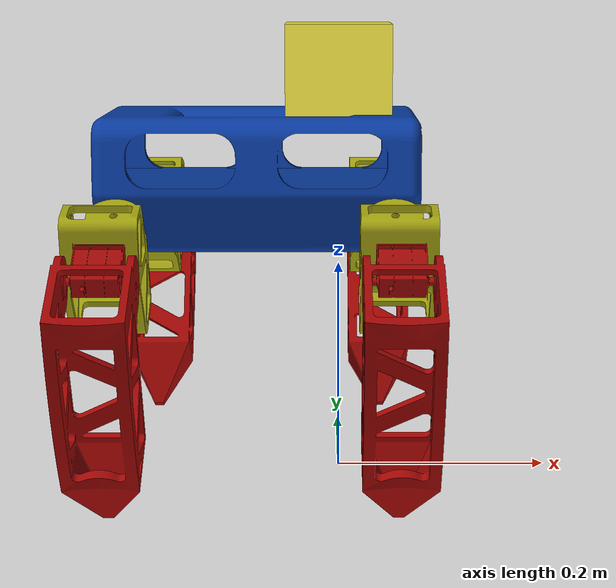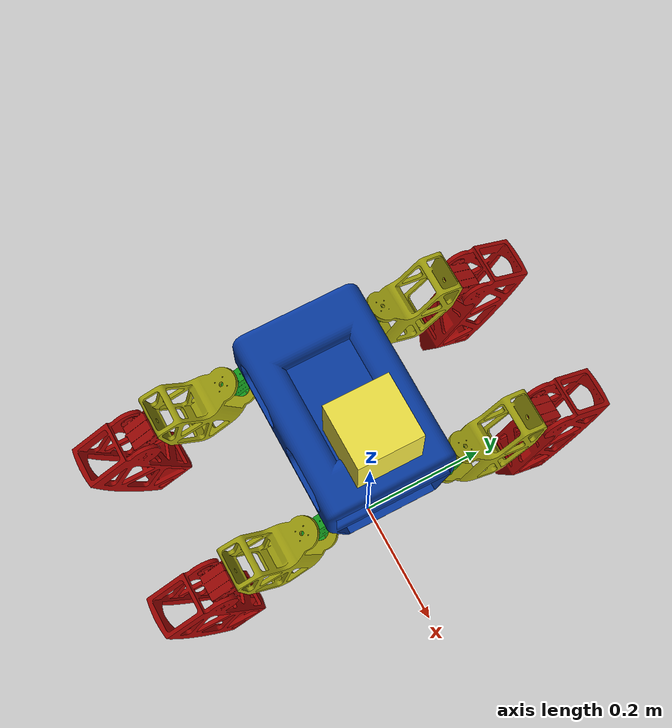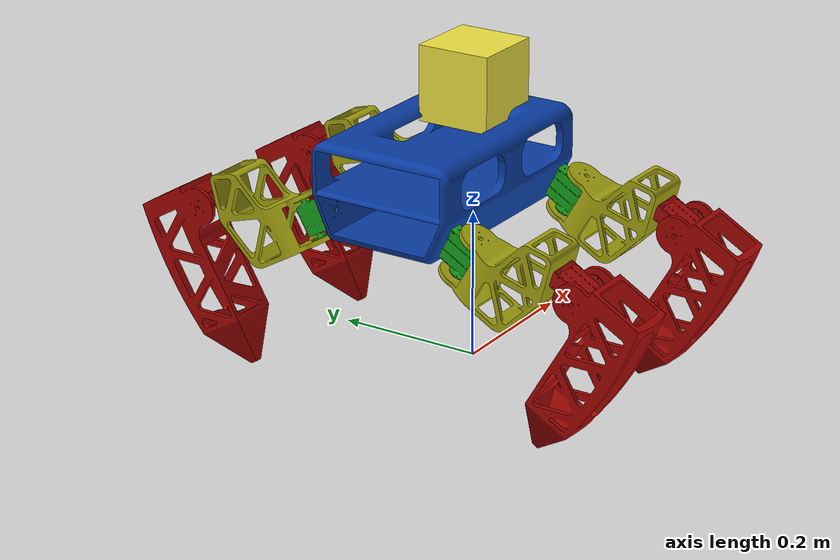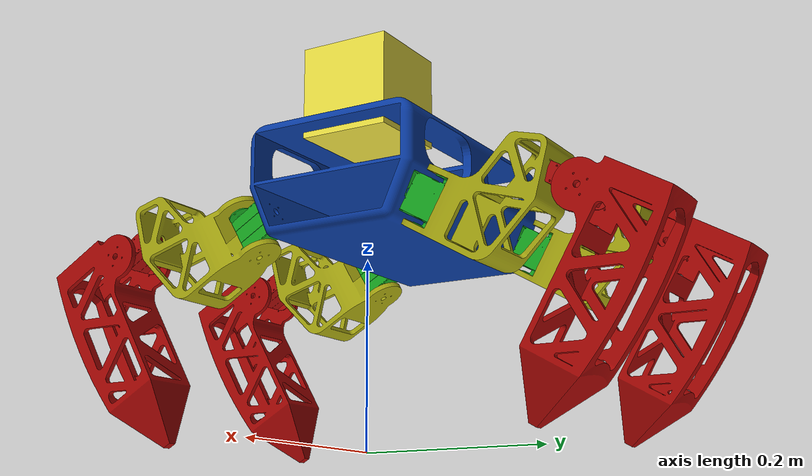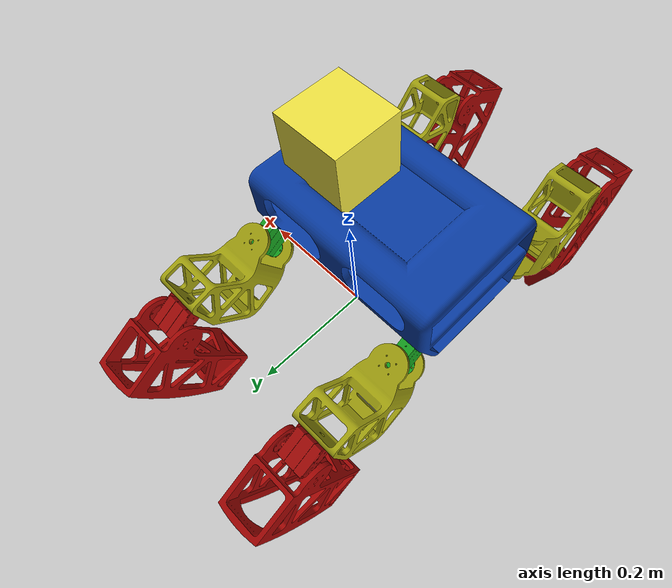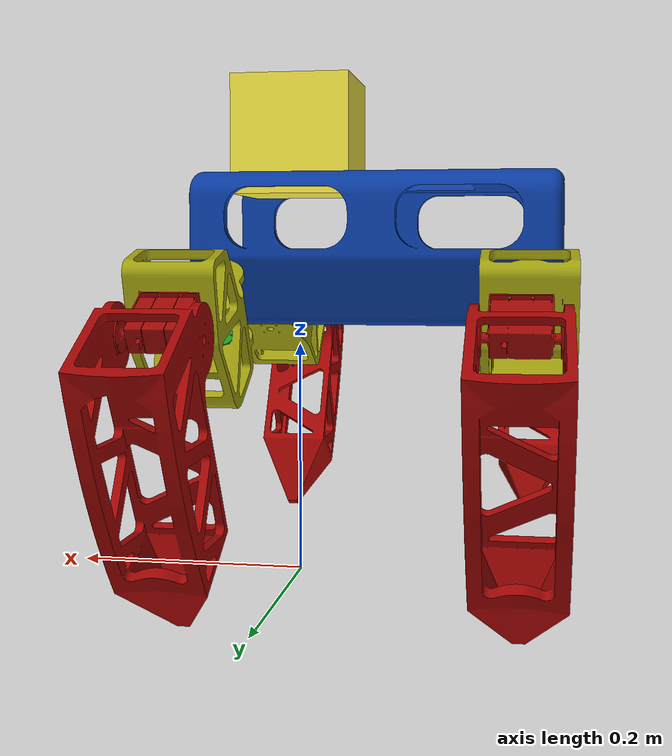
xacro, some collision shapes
<?xml version='1.0'?>

<robot name="insect" xmlns:xacro="http://www.ros.org/wiki/xacro">

<!--xacro parameters-->
<xacro:property name="connect_offset" value="0.02633" />

<!--macro param-->
<xacro:macro name="default_inertial" params="mass">
   <inertial>
     <origin xyz="0 -${connect_offset} 0" rpy="0 0 0" />
     <mass value="${mass}" />
     <inertia ixx="1.0" ixy="0.0" ixz="0.0" iyy="1.0" iyz="0.0" izz="1.0" />
   </inertial>
 </xacro:macro>

<link name="world"/>

<link name="torso_base">
<collision name="collision">
  <origin xyz="0 0 0" rpy="0 0 0"/>
  <geometry>
    <mesh filename="package://insect_1_description/meshes/torso_v1.dae"/>
  </geometry>
</collision>
<visual name="visual">
  <origin xyz="0 0 0" rpy="0 0 0"/>
  <geometry>
    <mesh filename="package://insect_1_description/meshes/torso_v1.dae"/>
  </geometry>
</visual>
<xacro:default_inertial mass="0.8"/>
</link>

 <!--IMU sensor_link-->
  <link name="imu_link">
    <visual>
      <origin rpy="0 0 0" xyz="0 0 0"/>
      <geometry>
        <box size="0.001 0.001 0.001"/> <!--box size="0.001 0.001 0.001"/-->
      </geometry>
    </visual>
    <collision>
      <origin rpy="0 0 0" xyz="0 0 0"/>
      <geometry>
        <box size="0.001 0.001 0.001"/>
      </geometry>
    </collision>
  </link>

  <link name= "l_f_motor">
    <collision name="collision">
      <origin xyz="0 0 0" rpy="0 0 0"/>
        <geometry>
          <mesh filename="package://insect_1_description/meshes/motor_v1.dae"/>
        </geometry>
      </collision>

      <visual name="visual">
        <origin xyz="0 0 0" rpy="0 0 0"/>
        <geometry>
          <mesh filename="package://insect_1_description/meshes/motor_v1.dae"/>
        </geometry>
      </visual>
      <xacro:default_inertial mass="0.2"/>
    </link>

    <link name= "r_f_motor">
      <collision name="collision">
        <origin xyz="0 0 0" rpy="0 0 0"/>
          <geometry>
            <mesh filename="package://insect_1_description/meshes/motor_v1.dae"/>
          </geometry>
        </collision>

        <visual name="visual">
          <origin xyz="0 0 0" rpy="0 0 0"/>
          <geometry>
            <mesh filename="package://insect_1_description/meshes/motor_v1.dae"/>
          </geometry>
        </visual>
        <xacro:default_inertial mass="0.2"/>
      </link>
      <link name= "l_b_motor">
        <collision name="collision">
          <origin xyz="0 0 0" rpy="0 0 0"/>
            <geometry>
              <mesh filename="package://insect_1_description/meshes/motor_v1.dae"/>
            </geometry>
          </collision>

          <visual name="visual">
            <origin xyz="0 0 0" rpy="0 0 0"/>
            <geometry>
              <mesh filename="package://insect_1_description/meshes/motor_v1.dae"/>
            </geometry>
          </visual>
          <xacro:default_inertial mass="0.2"/>
        </link>

        <link name= "r_b_motor">
          <collision name="collision">
            <origin xyz="0 0 0" rpy="0 0 0"/>
              <geometry>
                <mesh filename="package://insect_1_description/meshes/motor_v1.dae"/>
              </geometry>
            </collision>

            <visual name="visual">
              <origin xyz="0 0 0" rpy="0 0 0"/>
              <geometry>
                <mesh filename="package://insect_1_description/meshes/motor_v1.dae"/>
              </geometry>
            </visual>
            <xacro:default_inertial mass="0.2"/>
          </link>
          <link name= "l_f_hip">
            <collision name="collision">
              <origin xyz="0 0 0" rpy="0 0 0"/>
                <geometry>
                  <mesh filename="package://insect_1_description/meshes/hip_v1.dae"/>
                </geometry>
              </collision>

              <visual name="visual">
                <origin xyz="0 0 0" rpy="0 0 0"/>
                <geometry>
                  <mesh filename="package://insect_1_description/meshes/hip_v1.dae"/>
                </geometry>
              </visual>
              <xacro:default_inertial mass="0.4"/>
            </link>
            <link name= "r_f_hip">
              <collision name="collision">
                <origin xyz="0 0 0" rpy="0 0 0"/>
                  <geometry>
                    <mesh filename="package://insect_1_description/meshes/hip_v1.dae"/>
                  </geometry>
                </collision>

                <visual name="visual">
                  <origin xyz="0 0 0" rpy="0 0 0"/>
                  <geometry>
                    <mesh filename="package://insect_1_description/meshes/hip_v1.dae"/>
                  </geometry>
                </visual>
                <xacro:default_inertial mass="0.4"/>
              </link>
              <link name= "l_b_hip">
                <collision name="collision">
                  <origin xyz="0 0 0" rpy="0 0 0"/>
                    <geometry>
                      <mesh filename="package://insect_1_description/meshes/hip_v1.dae"/>
                    </geometry>
                  </collision>

                  <visual name="visual">
                    <origin xyz="0 0 0" rpy="0 0 0"/>
                    <geometry>
                      <mesh filename="package://insect_1_description/meshes/hip_v1.dae"/>
                    </geometry>
                  </visual>
                  <xacro:default_inertial mass="0.4"/>
                </link>
                <link name= "r_b_hip">
                  <collision name="collision">
                    <origin xyz="0 0 0" rpy="0 0 0"/>
                      <geometry>
                        <mesh filename="package://insect_1_description/meshes/hip_v1.dae"/>
                      </geometry>
                    </collision>

                    <visual name="visual">
                      <origin xyz="0 0 0" rpy="0 0 0"/>
                      <geometry>
                        <mesh filename="package://insect_1_description/meshes/hip_v1.dae"/>
                      </geometry>
                    </visual>
                    <xacro:default_inertial mass="0.4"/>
                  </link>
                  <link name= "l_f_h_motor">
        <!-- Camera properties -->
<joint name="camera_rgb_joint" type="fixed">
    <parent link="torso_base"/>
    <child link="camera_rgb_optical_frame"/>
    <origin xyz="0.150 0.0255 0.034" rpy="${pi/2} ${pi} ${pi/2}"/>
</joint>
<link name="camera_rgb_optical_frame">
    <inertial>
        <origin xyz="0.0 0.0 0.0" rpy="0.0 0.0 0.0" />
        <mass value="0.00001"/>
        <inertia
            ixx="1.0" ixy="0.0"  ixz="0.0"
            iyy="1.0" iyz="0.0"
            izz="1.0" />
    </inertial>
</link>

<joint name="camera_depth_joint" type="fixed">
    <parent link="torso_base"/>
    <child link="camera_depth_optical_frame"/>
    <origin xyz="0.150 -0.0225 0.034" rpy="${pi/2} ${pi} ${pi/2}"/>
</joint>
<link name="camera_depth_optical_frame">
    <inertial>
        <origin xyz="0.0 0.0 0.0" rpy="0.0 0.0 0.0" />
        <mass value="0.00001"/>
        <inertia
            ixx="1.0" ixy="0.0"  ixz="0.0"
            iyy="1.0" iyz="0.0"
            izz="1.0" />
    </inertial>
</link>
<collision name="collision">
                      <origin xyz="0 0 0" rpy="0 0 0"/>
                        <geometry>
                          <mesh filename="package://insect_1_description/meshes/motor_h_v1.dae"/>
                        </geometry>
                      </collision>

                      <visual name="visual">
                        <origin xyz="0 0 0" rpy="0 0 0"/>
                        <geometry>
                          <mesh filename="package://insect_1_description/meshes/motor_h_v1.dae"/>
                        </geometry>
                      </visual>
                      <xacro:default_inertial mass="0.2"/>
                    </link>

                    <link name= "r_f_h_motor">
                      <collision name="collision">
                        <origin xyz="0 0 0" rpy="0 0 0"/>
                          <geometry>
                            <mesh filename="package://insect_1_description/meshes/motor_h_v1.dae"/>
                          </geometry>
                        </collision>

                        <visual name="visual">
                          <origin xyz="0 0 0" rpy="0 0 0"/>
                          <geometry>
                            <mesh filename="package://insect_1_description/meshes/motor_h_v1.dae"/>
                          </geometry>
                        </visual>
                        <xacro:default_inertial mass="0.2"/>
                      </link>
                      <link name= "l_b_h_motor">
                        <collision name="collision">
                          <origin xyz="0 0 0" rpy="0 0 0"/>
                            <geometry>
                              <mesh filename="package://insect_1_description/meshes/motor_h_v1.dae"/>
                            </geometry>
                          </collision>

                          <visual name="visual">
                            <origin xyz="0 0 0" rpy="0 0 0"/>
                            <geometry>
                              <mesh filename="package://insect_1_description/meshes/motor_h_v1.dae"/>
                            </geometry>
                          </visual>
                          <xacro:default_inertial mass="0.2"/>
                        </link>
                        <link name= "r_b_h_motor">
                          <collision name="collision">
                            <origin xyz="0 0 0" rpy="0 0 0"/>
                              <geometry>
                                <mesh filename="package://insect_1_description/meshes/motor_h_v1.dae"/>
                              </geometry>
                            </collision>

                            <visual name="visual">
                              <origin xyz="0 0 0" rpy="0 0 0"/>
                              <geometry>
                                <mesh filename="package://insect_1_description/meshes/motor_h_v1.dae"/>
                              </geometry>
                            </visual>
                            <xacro:default_inertial mass="0.2"/>
                          </link>
                          <link name= "l_f_leg">
                            <collision name="collision">
                              <origin xyz="0 0 0" rpy="0 0 0"/>
                                <geometry>
                                  <mesh filename="package://insect_1_description/meshes/leg_v1.dae"/>
                                </geometry>
                              </collision>

                              <visual name="visual">
                                <origin xyz="0 0 0" rpy="0 0 0"/>
                                <geometry>
                                  <mesh filename="package://insect_1_description/meshes/leg_v1.dae"/>
                                </geometry>
                              </visual>
                              <xacro:default_inertial mass="0.4"/>
                            </link>
                            <link name= "l_b_leg">
                              <collision name="collision">
                                <origin xyz="0 0 0" rpy="0 0 0"/>
                                  <geometry>
                                    <mesh filename="package://insect_1_description/meshes/leg_v1.dae"/>
                                  </geometry>
                                </collision>

                                <visual name="visual">
                                  <origin xyz="0 0 0" rpy="0 0 0"/>
                                  <geometry>
                                    <mesh filename="package://insect_1_description/meshes/leg_v1.dae"/>
                                  </geometry>
                                </visual>
                                <xacro:default_inertial mass="0.4"/>
                              </link>
                              <link name= "r_f_leg">
                                <collision name="collision">
                                  <origin xyz="0 0 0" rpy="0 0 0"/>
                                    <geometry>
                                      <mesh filename="package://insect_1_description/meshes/leg_v1.dae"/>
                                    </geometry>
                                  </collision>

                                  <visual name="visual">
                                    <origin xyz="0 0 0" rpy="0 0 0"/>
                                    <geometry>
                                      <mesh filename="package://insect_1_description/meshes/leg_v1.dae"/>
                                    </geometry>
                                  </visual>
                                  <xacro:default_inertial mass="0.4"/>
                                </link>
                                <link name= "r_b_leg">
                                  <collision name="collision">
                                    <origin xyz="0 0 0" rpy="0 0 0"/>
                                      <geometry>
                                        <mesh filename="package://insect_1_description/meshes/leg_v1.dae"/>
                                      </geometry>
                                    </collision>

                                    <visual name="visual">
                                      <origin xyz="0 0 0" rpy="0 0 0"/>
                                      <geometry>
                                        <mesh filename="package://insect_1_description/meshes/leg_v1.dae"/>
                                      </geometry>
                                    </visual>
                                    <xacro:default_inertial mass="0.4"/>
                                  </link>
                                  <link name="hokuyo_link">
                                      <collision>
                                          <origin xyz="0 0 0" rpy="0 0 0"/>
                                          <geometry>
                                              <box size="0.1 0.1 0.1"/>
                                          </geometry>
                                      </collision>     <origin xyz="0 0 0" rpy="0 0 0"/>
                                          <geometry>

                                              <mesh filename="package://insect_1_description/meshes/hokuyo.dae"/>
                                          </geometry>

                                      <visual>
                                          <origin xyz="0 0 0" rpy="0 0 0"/>
                                          <geometry>

                                              <mesh filename="package://insect_1_description/meshes/hokuyo.dae"/>
                                          </geometry>
                                      </visual>

                                      <inertial>
                                          <mass value="1e-5" />
                                          <origin xyz="0 0 0" rpy="0 0 0"/>
                                          <inertia ixx="1e-6" ixy="0" ixz="0" iyy="1e-6" iyz="0" izz="1e-6" />
                                      </inertial>
                                  </link>

<!-- Joint properties -->
<xacro:property name="joint_lower_limit" value="-${pi/12}"/>
<xacro:property name="joint_upper_limit" value="${pi/12}"/>
<xacro:property name="joint_effort" value="6.0"/>
<xacro:property name="joint_velocity" value="0.524"/>
<xacro:property name="pi" value="3.1415926535897931"/>

<joint name="hokuyo_joint" type="revolute">
    <origin xyz="0 0 0.08" rpy="0 0 0"/>
    <parent link="torso_base"/>
    <child link="hokuyo_link"/>
    <limit lower="${joint_lower_limit}" upper="${joint_upper_limit}" effort="${joint_effort}" velocity="${joint_velocity}"/>
    <safety_controller k_position="100" k_velocity="100" soft_lower_limit="-10.5236" soft_upper_limit="10.5236"/>
    <axis xyz="0 0 1"/>
</joint>

<joint name="world_joint"  type="fixed">
  <origin xyz="0 0 0.3" rpy="0 0 0" />
  <parent link="world"/>
  <child link="torso_base"/>
  <axis xyz="0 0 1" rpy="0 0 0"/>
</joint>
<!--IMU sensor joint-->
<joint name="imu_joint" type="fixed">
  <axis xyz="0.01 0 0.01"/>
  <origin xyz="0 0 0.05"/>
  <parent link="torso_base"/>
  <child link="imu_link"/>
</joint>

  <joint name="l_f_motor_joint"  type="fixed">
  <origin xyz="0.048 0.08 -0.08" rpy="0 -${pi/6} -${pi/2}" />
  <parent link="torso_base"/>
  <child link="l_f_motor"/>
  <axis xyz="0 0 1" rpy="0 0 0"/>
</joint>

<joint name="r_f_motor_joint"  type="fixed">
  <origin xyz="0.048 -0.09 -0.08" rpy="0 -${pi/6} ${pi/2}" />
  <parent link="torso_base"/>
  <child link="r_f_motor"/>
  <axis xyz="0 0 1" rpy="0 0 0"/>
</joint>

<joint name="l_b_motor_joint"  type="fixed">
  <origin xyz="-0.2 0.08 -0.08" rpy="0 -${pi/6} -${pi/2}" />
  <parent link="torso_base"/>
  <child link="l_b_motor"/>
  <axis xyz="0 0 1" rpy="0 0 0"/>
</joint>

<joint name="r_b_motor_joint"  type="fixed">
  <origin xyz="-0.2 -0.09 -0.08" rpy="0 -${pi/6} ${pi/2}"/>
  <parent link="torso_base"/>
  <child link="r_b_motor"/>
  <axis xyz="0 0 1" rpy="0 0 0"/>
</joint>

<joint name="l_f_hip_joint"  type="revolute">
  <origin xyz=" -0.04 -0.00005 -0.054" rpy="0 0 0" />
  <parent link="l_f_motor"/>
  <child link="l_f_hip"/>
  <dynamics damping="0.1" friction="0"/>
  <limit lower="${joint_lower_limit}" upper="${joint_upper_limit}" effort="${joint_effort}" velocity="${joint_velocity}"/>
  <safety_controller k_position="100" k_velocity="100" soft_lower_limit="-10.5236" soft_upper_limit="10.5236"/>
  <axis xyz="0 0 1"/>
</joint>

  <joint name="r_f_hip_joint"  type="revolute">
  <origin xyz="-0.04 0.00005 -0.054" rpy="0 0 0" />
  <parent link="r_f_motor"/>
  <child link="r_f_hip"/>
  <dynamics damping="0.1" friction="0"/>
  <limit lower="${joint_lower_limit}" upper="${joint_upper_limit}" effort="${joint_effort}" velocity="${joint_velocity}"/>
  <safety_controller k_position="100" k_velocity="100" soft_lower_limit="-10.5236" soft_upper_limit="10.5236"/>
  <axis xyz="0 0 1" rpy="0 0 0"/>
</joint>

 <joint name="l_b_hip_joint"  type="revolute">
  <origin xyz="-0.04 0.003 -0.054" rpy="0 0 0" />
  <parent link="l_b_motor"/>
  <child link="l_b_hip"/>
  <dynamics damping="0.1" friction="0"/>
  <axis xyz="0 0 1" rpy="0 0 0"/>
  <limit lower="${joint_lower_limit}" upper="${joint_upper_limit}" effort="${joint_effort}" velocity="${joint_velocity}"/>
  <safety_controller k_position="100" k_velocity="100" soft_lower_limit="-10.5236" soft_upper_limit="10.5236"/>
</joint>

 <joint name="r_b_hip_joint"  type="revolute">
  <origin xyz="-0.04 0.003 -0.054" rpy="0 0 0" />
  <parent link="r_b_motor"/>
  <child link="r_b_hip"/>
  <dynamics damping="0.1" friction="0"/>
  <limit lower="${joint_lower_limit}" upper="${joint_upper_limit}" effort="${joint_effort}" velocity="${joint_velocity}"/>
  <safety_controller k_position="100" k_velocity="100" soft_lower_limit="-10.5236" soft_upper_limit="10.5236"/>
  <axis xyz="0 0 1" rpy="0 0 0"/>
</joint>

<joint name="l_f_h_motor_joint" type="fixed">
  <origin xyz="-0.105 -0.003 0.153" rpy="0 0 ${pi}" />
  <parent link="l_f_hip"/>
  <child link="l_f_h_motor"/>
  <axis xyz="0 0 1" rpy="0 0 0"/>
</joint>

<joint name="r_f_h_motor_joint"  type="fixed">
  <origin xyz="-0.105 -0.003 0.153" rpy="0 0 -${pi}"/>
  <parent link="r_f_hip"/>
  <child link="r_f_h_motor"/>
  <axis xyz="0 0 1" rpy="0 0 0"/>
</joint>

<joint name="l_b_h_motor_joint"  type="fixed">
  <origin xyz="-0.105 0.003 0.153" rpy="0 0 ${pi}" />
  <parent link="l_b_hip"/>
  <child link="l_b_h_motor"/>
  <axis xyz="0 0 1" rpy="0 0 0"/>
</joint>

<joint name="r_b_h_motor_joint"  type="fixed">
  <origin xyz="-0.105 -0.003 0.153" rpy="0 0 ${pi}" />
  <parent link="r_b_hip"/>
  <child link="r_b_h_motor"/>
  <axis xyz="0 0 1" rpy="0 0 0"/>
</joint>

<joint name="l_f_leg_joint"  type="revolute">
  <origin xyz="0.070 -0.0002 -0.077" rpy="0 0 ${pi}" />
  <parent link="l_f_h_motor"/>
  <child link="l_f_leg"/>
  <dynamics damping="0.1" friction="0"/>
  <limit lower="${joint_lower_limit}" upper="${joint_upper_limit}" effort="${joint_effort}" velocity="${joint_velocity}"/>
  <safety_controller k_position="100" k_velocity="100" soft_lower_limit="-10.5236" soft_upper_limit="10.5236"/>
  <axis xyz="0 1 0" rpy="0 0 0"/>
</joint>
es
<joint name="l_b_leg_joint"  type="revolute">
  <origin xyz="0.070 0.0002 -0.077" rpy="0 0 ${pi}" />
  <parent link="l_b_h_motor"/>
  <child link="l_b_leg"/>
  <dynamics damping="0.1" friction="0"/>
  <limit lower="${joint_lower_limit}" upper="${joint_upper_limit}" effort="${joint_effort}" velocity="${joint_velocity}"/>
  <safety_controller k_position="100" k_velocity="100" soft_lower_limit="-10.5236" soft_upper_limit="10.5236"/>
  <axis xyz="0 1 0" rpy="0 0 0"/>
</joint>

<joint name="r_f_leg_joint"  type="revolute">
  <origin xyz="0.070 -0.0002 -0.077" rpy="0 0 ${pi}" />
  <parent link="r_f_h_motor"/>
  <child link="r_f_leg"/>
  <dynamics damping="0.1" friction="0"/>
  <limit lower="${joint_lower_limit}" upper="${joint_upper_limit}" effort="${joint_effort}" velocity="${joint_velocity}"/>
  <safety_controller k_position="100" k_velocity="100" soft_lower_limit="-10.5236" soft_upper_limit="10.5236"/>
  <axis xyz="0 1 0" rpy="0 0 0"/>
</joint>

<joint name="r_b_leg_joint"  type="revolute">
  <origin xyz="0.070 0.0002 -0.077" rpy="0 0 ${pi}" />
  <parent link="r_b_h_motor"/>
  <child link="r_b_leg"/>
  <dynamics damping="0.1" friction="0"/>
  <limit lower="${joint_lower_limit}" upper="${joint_upper_limit}" effort="${joint_effort}" velocity="${joint_velocity}"/>
  <safety_controller k_position="100" k_velocity="100" soft_lower_limit="-10.5236" soft_upper_limit="10.5236"/>
  <axis xyz="0 1 0" rpy="0 0 0"/>
</joint>

<transmission name="l_f_hip_transmission">
  <type>transmission_interface/SimpleTransmission</type>
  <joint name="l_f_hip_joint">
    <hardwareInterface>EffortJointInterface</hardwareInterface>
  </joint>
  <actuator name="l_f_hip_motor">
    <hardwareInterface>EffortJointInterface</hardwareInterface>
    <mechanicalReduction>1</mechanicalReduction>
  </actuator>
</transmission>

  <transmission name="l_b_hip_transmission">
    <type>transmission_interface/SimpleTransmission</type>
    <joint name="l_b_hip_joint">
      <hardwareInterface>EffortJointInterface</hardwareInterface>
    </joint>
    <actuator name="l_b_hip_motor">
      <hardwareInterface>EffortJointInterface</hardwareInterface>
      <mechanicalReduction>1</mechanicalReduction>
    </actuator>
  </transmission>

  <transmission name="r_f_hip_transmission">
    <type>transmission_interface/SimpleTransmission</type>
    <joint name="r_f_hip_joint">
      <hardwareInterface>EffortJointInterface</hardwareInterface>
    </joint>
    <actuator name="r_f_hip_motor">
      <hardwareInterface>EffortJointInterface</hardwareInterface>
      <mechanicalReduction>1</mechanicalReduction>
    </actuator>
  </transmission>

  <transmission name="r_b_hip_transmission">
    <type>transmission_interface/SimpleTransmission</type>
    <joint name="r_b_hip_joint">
      <hardwareInterface>EffortJointInterface</hardwareInterface>
    </joint>
    <actuator name="r_b_hip_motor">
      <hardwareInterface>EffortJointInterface</hardwareInterface>
      <mechanicalReduction>1</mechanicalReduction>
    </actuator>
  </transmission>

  <transmission name="l_f_leg_transmission">
    <type>transmission_interface/SimpleTransmission</type>
    <joint name="l_f_leg_joint">
      <hardwareInterface>EffortJointInterface</hardwareInterface>
    </joint>
    <actuator name="l_f_leg_motor">
      <hardwareInterface>EffortJointInterface</hardwareInterface>
      <mechanicalReduction>1</mechanicalReduction>
    </actuator>
  </transmission>

  <transmission name="l_b_leg_transmission">
    <type>transmission_interface/SimpleTransmission</type>
    <joint name="l_b_leg_joint">
      <hardwareInterface>EffortJointInterface</hardwareInterface>
    </joint>
    <actuator name="l_b_leg_motor">
      <hardwareInterface>EffortJointInterface</hardwareInterface>
      <mechanicalReduction>1</mechanicalReduction>
    </actuator>
  </transmission>

  <transmission name="r_f_leg_transmission">
    <type>transmission_interface/SimpleTransmission</type>
    <joint name="r_f_leg_joint">
      <hardwareInterface>EffortJointInterface</hardwareInterface>
    </joint>
    <actuator name="r_f_leg_motor">
      <hardwareInterface>EffortJointInterface</hardwareInterface>
      <mechanicalReduction>1</mechanicalReduction>
    </actuator>
  </transmission>

  <transmission name="r_b_leg_transmission">
    <type>transmission_interface/SimpleTransmission</type>
    <joint name="r_b_leg_joint">
      <hardwareInterface>EffortJointInterface</hardwareInterface>
    </joint>
    <actuator name="r_b_leg_motor">
      <hardwareInterface>EffortJointInterface</hardwareInterface>
      <mechanicalReduction>1</mechanicalReduction>
    </actuator>
  </transmission>

<!--contact_sensor_torso_base-->
<gazebo reference="torso_base">
  <sensor name="contact_sensor" type="contact">
    <always_on>true</always_on>
    <update_rate>15.0</update_rate>
    <contact>
      <collision>collision</collision>
    </contact>
    <plugin filename="libgazebo_ros_bumper.so" name="gazebo_ros_bumper_controller">
       <bumperTopicName>torso_contact_info</bumperTopicName>
      <frameName>torso_base</frameName>
    </plugin>
  </sensor>
</gazebo>

<!--front_left_leg_contact contact_sensor-->
<!--back_left_leg_contact contact_sensor-->
<!--frot right_leg_contact contact_sensor-->
<!--back right_leg_contact contact_sensor-->
<gazebo>
     <plugin name="gazebo_ros_control" filename="libgazebo_ros_control.so">
       <robotNamespace>/insect</robotNamespace>
     </plugin>
</gazebo>

<gazebo>
  <plugin name="f3d_controller" filename="libgazebo_ros_f3d.so">
    <robotNamespace>/insect</robotNamespace>
    <alwaysOn>true</alwaysOn>
    <updateRate>50</updateRate>
    <bodyName>l_f_leg</bodyName>
    <topicName>l_f_leg_ground_feedback</topicName>
    <frameName>l_f_leg</frameName>
    </plugin>
</gazebo>

<gazebo>
  <plugin name="f3d_controller" filename="libgazebo_ros_f3d.so">
    <robotNamespace>/insect</robotNamespace>
    <alwaysOn>true</alwaysOn>
    <updateRate>50</updateRate>
    <bodyName>r_f_leg</bodyName>
    <topicName>r_f_leg_ground_feedback</topicName>
    <frameName>r_f_leg</frameName>
    </plugin>
</gazebo>

<gazebo>
  <plugin name="f3d_controller" filename="libgazebo_ros_f3d.so">
    <robotNamespace>/insect</robotNamespace>
    <alwaysOn>true</alwaysOn>
    <updateRate>50</updateRate>
    <bodyName>l_b_leg</bodyName>
    <topicName>l_b_leg_ground_feedback</topicName>
    <frameName>l_b_leg</frameName>
    </plugin>
</gazebo>
<gazebo>
  <plugin name="f3d_controller" filename="libgazebo_ros_f3d.so">
    <robotNamespace>/insect</robotNamespace>
    <alwaysOn>true</alwaysOn>
    <updateRate>50</updateRate>
    <bodyName>r_b_leg</bodyName>
    <topicName>r_b_leg_ground_feedback</topicName>
    <frameName>r_b_leg</frameName>
    </plugin>
</gazebo  >

<!--plugin for IMU sensor--><!--improve plugin-->
<gazebo>
  <plugin name="imu_controller" filename="libgazebo_ros_imu.so">
    <robotNamespace>/insect</robotNamespace>
    <alwaysOn>true</alwaysOn>
    <updateRate>50.0</updateRate>
    <bodyName>torso_base</bodyName>
    <topicName>imu_data</topicName>
    <gaussianNoise>2.89e-08</gaussianNoise>
    <xyzOffsets>0 0 0</xyzOffsets>
    <rpyOffsets>0 0 0</rpyOffsets>
  </plugin>
</gazebo>

<!--################################################hokuyo_sensor_plugin##################################-->
<gazebo reference="hokuyo_link">
    <sensor type="ray" name="head_hokuyo_sensor">
        <pose>0 0 0 0 0 0</pose>
        <visualize>true</visualize>
        <update_rate>60</update_rate>
        <ray>
            <scan>
            <horizontal>
                <samples>720</samples>
                <resolution>1</resolution>
                <min_angle>-0.785</min_angle>
                <max_angle>0.785</max_angle>
            </horizontal>
            </scan>
            <range>
                <min>0.10</min>
                <max>5.0</max>
                <resolution>0.01</resolution>
            </range>
            <noise>
                <type>gaussian</type>
                <mean>0.0</mean>
                <stddev>0.01</stddev>
            </noise>
        </ray>
        <plugin name="laser" filename="libgazebo_ros_laser.so">
            <topicName>/scan</topicName>
            <frameName>hokuyo_link</frameName>
        </plugin>
    </sensor>
</gazebo>

</robot>
